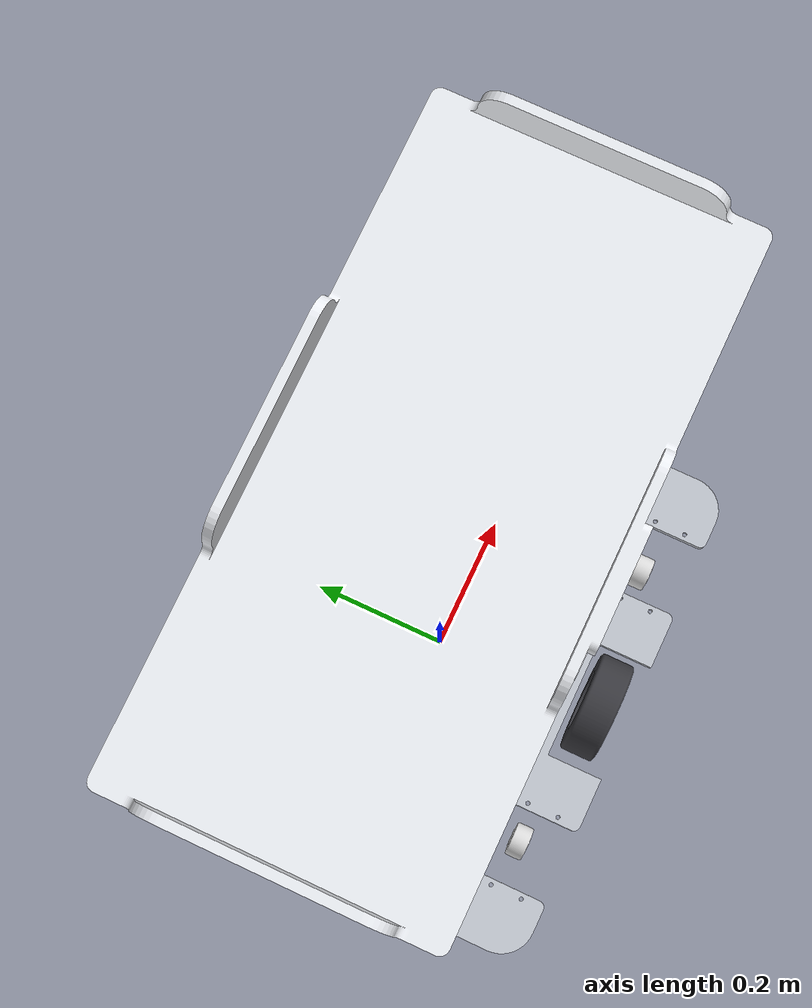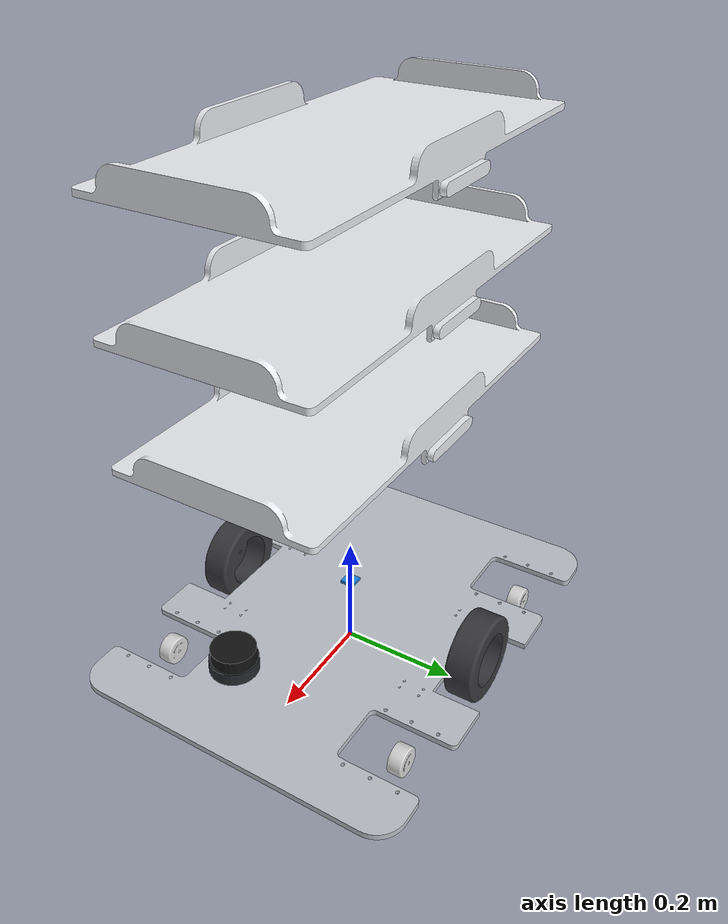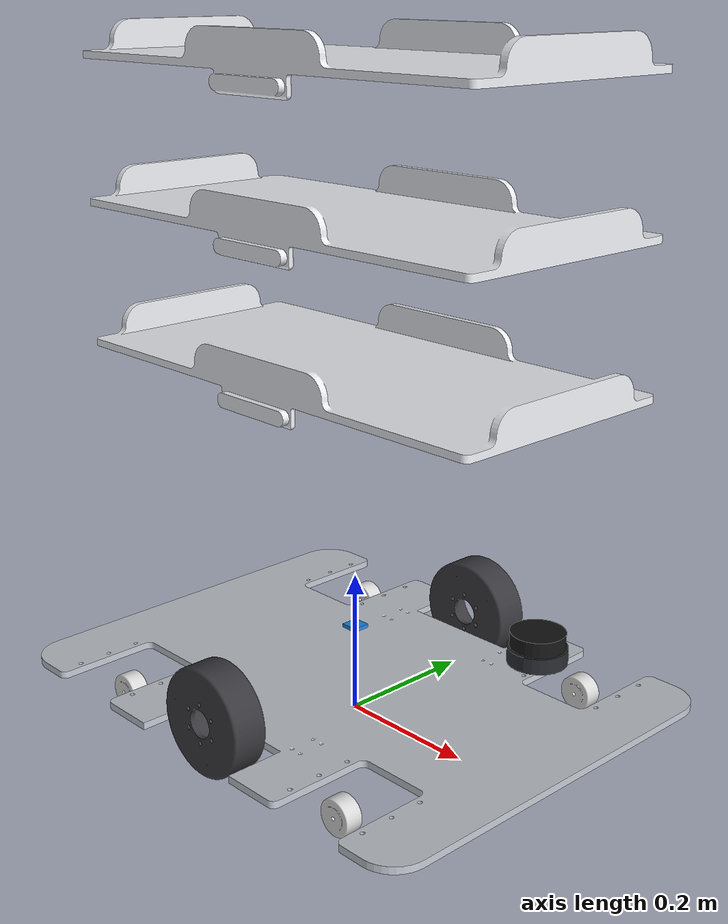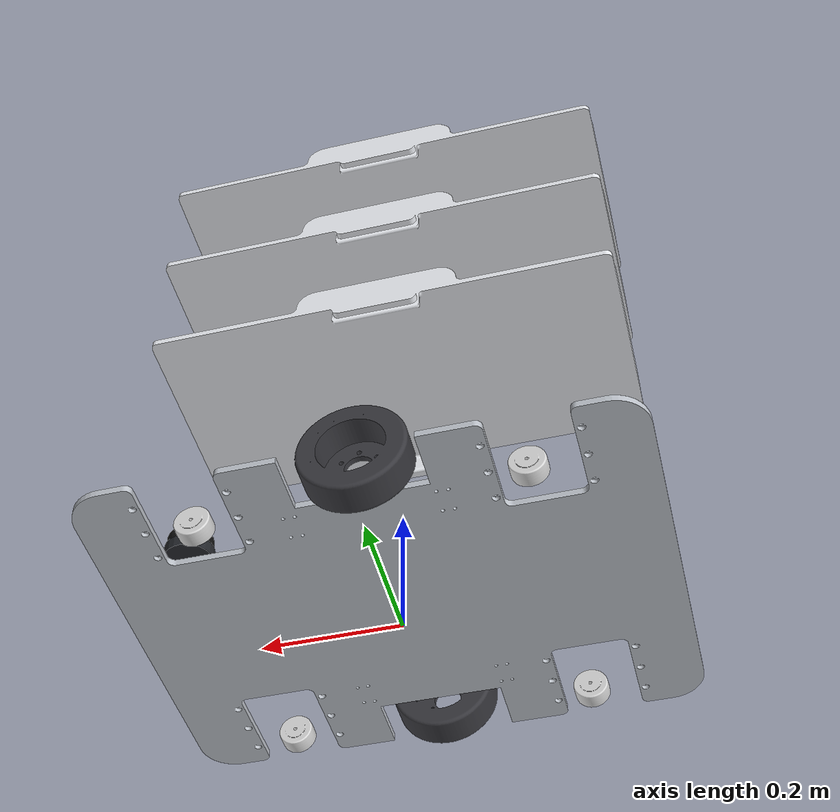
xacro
<?xml version="1.0"?>
<robot xmlns:xacro="http://www.ros.org/wiki/xacro" name="amr">

  <!-- Core Modular Libraries                               -->
  <xacro:include filename="properties.xacro" />
  <xacro:include filename="materials.xacro" />
  <xacro:include filename="macros_inertia.xacro" />

  <!-- REP-105 Root Frames: base_footprint & base_link      -->

  <!-- base_footprint: 2D projection on ground surface (Z = 0) -->
  <link name="base_footprint"/>

  <!-- base_link: Center of rotation on active drive axle (Z = wheel_radius = 0.075m) -->
  <joint name="base_footprint_joint" type="fixed">
    <parent link="base_footprint"/>
    <child link="base_link"/>
    <origin xyz="0 0 ${wheel_radius}" rpy="0 0 0"/>
  </joint>

  <link name="base_link"/>

  <!-- Robot Structural Components                          -->
  <xacro:include filename="chassis.xacro" />
  <xacro:include filename="drive_wheels.xacro" />
  <xacro:include filename="caster_wheels.xacro" />
  <xacro:include filename="food_trays.xacro" />
  <xacro:include filename="lidar.xacro" />
  <xacro:include filename="imu.xacro" />

  <!-- Gazebo Simulation Plugins & Encoder Feedback         -->
  <xacro:include filename="gazebo.xacro" />

</robot>

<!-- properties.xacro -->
<robot xmlns:xacro="http://www.ros.org/wiki/xacro">

  <!-- Robot Dimensions & Kinematic Properties             -->

  <!-- Active Drive Wheels specifications -->
  <xacro:property name="wheel_radius"   value="0.075"/>
  <xacro:property name="wheel_width"    value="0.050"/>
  <xacro:property name="wheel_mass"     value="2.0"/>
  <!-- Distance from robot center (Y-axis): 250mm -->
  <xacro:property name="wheel_y_offset" value="0.250"/>
  <xacro:property name="wheel_track"    value="${2.0 * wheel_y_offset}"/>

  <!-- Passive Caster Wheels specifications -->
  <xacro:property name="caster_radius"   value="0.025"/>
  <xacro:property name="caster_width"    value="0.027"/>
  <xacro:property name="caster_mass"     value="0.5"/>
  <!-- Distance from drive axle (X-axis): 220mm -->
  <xacro:property name="caster_x_offset" value="0.22"/>
  <!-- Distance from robot center (Y-axis): 230mm -->
  <xacro:property name="caster_y_offset" value="0.23"/>
  <!-- Z offset so casters touch ground (Z_ground = 0) -->
  <xacro:property name="caster_z_offset" value="${-(wheel_radius - caster_radius)}"/>

  <!-- Chassis dimensions -->
  <xacro:property name="chassis_length"    value="0.760"/>
  <xacro:property name="chassis_width"     value="0.600"/>
  <xacro:property name="chassis_thickness" value="0.010"/>
  <xacro:property name="chassis_mass"      value="25.0"/>
  <xacro:property name="ground_clearance"  value="0.040"/>

  <!-- Elevation of bottom of chassis relative to base_link (at wheel axle: 0.075m) -->
  <!-- z_offset = ground_clearance - wheel_radius = 0.040 - 0.075 = -0.035m -->
  <xacro:property name="chassis_z_offset" value="${ground_clearance - wheel_radius}"/>

  <!-- Food Delivery Trays Specifications                  -->
  <xacro:property name="tray_length" value="0.720"/>
  <xacro:property name="tray_width"  value="0.365"/>
  <xacro:property name="tray_height" value="0.080"/>
  <xacro:property name="tray_mass"   value="5.0"/>

  <!-- Elevation parameters -->
  <!-- Tray 1 bottom from chassis bottom: 424mm -->
  <xacro:property name="tray_1_bottom_from_chassis" value="0.424"/>
  <!-- Distance between consecutive tray bottoms: 200mm -->
  <xacro:property name="tray_spacing"               value="0.200"/>

  <!-- Tray bottom Z positions relative to base_link -->
  <!-- Bottom of chassis is at chassis_z_offset (-0.035m) -->
  <xacro:property name="tray_1_z" value="${chassis_z_offset + tray_1_bottom_from_chassis}"/>
  <xacro:property name="tray_2_z" value="${tray_1_z + tray_spacing}"/>
  <xacro:property name="tray_3_z" value="${tray_2_z + tray_spacing}"/>

  <!-- 2D LiDAR Sensor Specifications                      -->
  <xacro:property name="lidar_radius"          value="0.038"/> <!-- Radius 38mm (Max diameter 76mm - standard RPLIDAR A2) -->
  <xacro:property name="lidar_height"          value="0.040"/> <!-- Height 40mm -->
  <xacro:property name="lidar_mass"            value="0.200"/> <!-- Mass 200g -->

  <!-- LiDAR Placement -->
  <!-- Clearance from LiDAR max diameter front edge to vehicle front edge: 15mm -->
  <xacro:property name="lidar_front_clearance" value="0.015"/>
  <xacro:property name="lidar_x_offset"        value="${chassis_length/2.0 - lidar_front_clearance - lidar_radius}"/>
  <xacro:property name="lidar_y_offset"        value="0.0"/>

  <!-- Elevation Z: offset from chassis bottom -->
  <xacro:property name="lidar_z_from_chassis"  value="0.150"/>
  <xacro:property name="lidar_z_offset"        value="${chassis_z_offset + lidar_z_from_chassis}"/>

  <!-- 9-DOF IMU Sensor Specifications                     -->
  <xacro:property name="imu_mass"     value="0.050"/> <!-- Mass 50g -->
  <xacro:property name="imu_size_x"   value="0.025"/> <!-- Length 25mm -->
  <xacro:property name="imu_size_y"   value="0.025"/> <!-- Width 25mm -->
  <xacro:property name="imu_size_z"   value="0.005"/> <!-- Height 5mm -->

  <!-- IMU Placement (rigidly mounted near center of rotation) -->
  <xacro:property name="imu_x_offset" value="0.0"/>
  <xacro:property name="imu_y_offset" value="0.0"/>
  <xacro:property name="imu_z_offset" value="0.050"/>

</robot>

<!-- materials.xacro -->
<robot xmlns:xacro="http://www.ros.org/wiki/xacro">

  <!-- Color definitions for RViz -->
  <material name="robot_white">
    <color rgba="0.92 0.93 0.95 1.0"/>
  </material>

  <material name="robot_dark">
    <color rgba="0.15 0.16 0.18 1.0"/>
  </material>

  <material name="robot_metal">
    <color rgba="0.75 0.77 0.80 1.0"/>
  </material>

  <material name="robot_accent">
    <color rgba="0.12 0.53 0.90 1.0"/>
  </material>

  <material name="robot_wheel">
    <color rgba="0.22 0.22 0.24 1.0"/>
  </material>

  <material name="robot_caster">
    <color rgba="0.85 0.85 0.85 1.0"/>
  </material>

  <material name="robot_sensor">
    <color rgba="0.08 0.08 0.08 1.0"/>
  </material>

</robot>

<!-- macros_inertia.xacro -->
<robot xmlns:xacro="http://www.ros.org/wiki/xacro">

  <!-- Analytical Inertia Macros (Positive Definite Tensors) -->

  <!-- Solid Box Inertia -->
  <xacro:macro name="inertial_box" params="mass x y z *origin">
    <inertial>
      <xacro:insert_block name="origin"/>
      <mass value="${mass}"/>
      <inertia ixx="${(1.0/12.0) * mass * (y*y + z*z)}" ixy="0.0" ixz="0.0"
               iyy="${(1.0/12.0) * mass * (x*x + z*z)}" iyz="0.0"
               izz="${(1.0/12.0) * mass * (x*x + y*y)}"/>
    </inertial>
  </xacro:macro>

  <!-- Solid Cylinder Inertia (Z-axis aligned by default) -->
  <xacro:macro name="inertial_cylinder" params="mass length radius *origin">
    <inertial>
      <xacro:insert_block name="origin"/>
      <mass value="${mass}"/>
      <inertia ixx="${(1.0/12.0) * mass * (3.0*radius*radius + length*length)}" ixy="0.0" ixz="0.0"
               iyy="${(1.0/12.0) * mass * (3.0*radius*radius + length*length)}" iyz="0.0"
               izz="${(1.0/2.0) * mass * radius * radius}"/>
    </inertial>
  </xacro:macro>

  <!-- Solid Sphere Inertia -->
  <xacro:macro name="inertial_sphere" params="mass radius *origin">
    <inertial>
      <xacro:insert_block name="origin"/>
      <mass value="${mass}"/>
      <inertia ixx="${(2.0/5.0) * mass * radius * radius}" ixy="0.0" ixz="0.0"
               iyy="${(2.0/5.0) * mass * radius * radius}" iyz="0.0"
               izz="${(2.0/5.0) * mass * radius * radius}"/>
    </inertial>
  </xacro:macro>

</robot>

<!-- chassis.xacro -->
<robot xmlns:xacro="http://www.ros.org/wiki/xacro">

  <!-- Base Chassis Plate (Centered at X=0, Y=0, Z_ground=40mm) -->

  <joint name="chassis_joint" type="fixed">
    <parent link="base_link"/>
    <child link="chassis_link"/>
    <origin xyz="0 0 0" rpy="0 0 0"/>
  </joint>

  <link name="chassis_link">
    <!-- Visual: Base Chassis Plate STL -->
    <visual>
      <origin xyz="${-chassis_length/2.0} ${-chassis_width/2.0} ${chassis_z_offset}" rpy="${pi/2} 0 ${pi/2}"/>
      <geometry>
        <mesh filename="package://amr_description/meshes/visual/chassis.stl" scale="1 1 1"/>
      </geometry>
      <material name="robot_metal"/>
    </visual>

    <!-- Collision: Analytical Box Plate -->
    <collision>
      <origin xyz="0 0 ${chassis_z_offset + chassis_thickness/2.0}" rpy="0 0 0"/>
      <geometry>
        <box size="${chassis_length} ${chassis_width} ${chassis_thickness}"/>
      </geometry>
    </collision>

    <!-- Inertial: Analytical Box Inertia (${chassis_mass}kg steel/aluminum plate) -->
    <xacro:inertial_box mass="${chassis_mass}" x="${chassis_length}" y="${chassis_width}" z="${chassis_thickness}">
      <origin xyz="0 0 ${chassis_z_offset + chassis_thickness/2.0}" rpy="0 0 0"/>
    </xacro:inertial_box>
  </link>

  <gazebo reference="chassis_link">
    <material>Gazebo/Grey</material>
  </gazebo>

</robot>

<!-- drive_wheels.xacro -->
<robot xmlns:xacro="http://www.ros.org/wiki/xacro">

  <!-- Active Differential Drive Wheels                     -->

  <!-- Left Drive Wheel -->
  <joint name="left_wheel_joint" type="continuous">
    <parent link="base_link"/>
    <child link="left_wheel_link"/>
    <origin xyz="0 ${wheel_y_offset} 0" rpy="0 0 0"/>
    <axis xyz="0 1 0"/>
  </joint>

  <link name="left_wheel_link">
    <!-- Visual: active_wheel.stl centered at wheel rotational center -->
    <visual>
      <origin xyz="-0.075 -0.025 -0.075" rpy="0 0 0"/>
      <geometry>
        <mesh filename="package://amr_description/meshes/visual/active_wheel.stl" scale="1 1 1"/>
      </geometry>
      <material name="robot_wheel"/>
    </visual>

    <!-- Collision: Analytical Cylinder aligned along Y-axis -->
    <collision>
      <origin xyz="0 0 0" rpy="${pi/2} 0 0"/>
      <geometry>
        <cylinder radius="${wheel_radius}" length="${wheel_width}"/>
      </geometry>
    </collision>

    <!-- Inertial: Analytical Cylinder Inertia -->
    <xacro:inertial_cylinder mass="${wheel_mass}" length="${wheel_width}" radius="${wheel_radius}">
      <origin xyz="0 0 0" rpy="${pi/2} 0 0"/>
    </xacro:inertial_cylinder>
  </link>

  <gazebo reference="left_wheel_link">
    <material>Gazebo/DarkGrey</material>
    <mu1 value="1.0"/>
    <mu2 value="1.0"/>
    <kp value="10000000.0"/>
    <kd value="1.0"/>
  </gazebo>

  <!-- Right Drive Wheel -->
  <joint name="right_wheel_joint" type="continuous">
    <parent link="base_link"/>
    <child link="right_wheel_link"/>
    <origin xyz="0 -${wheel_y_offset} 0" rpy="0 0 0"/>
    <axis xyz="0 1 0"/>
  </joint>

  <link name="right_wheel_link">
    <!-- Visual: active_wheel.stl centered at wheel rotational center -->
    <visual>
      <origin xyz="-0.075 -0.025 -0.075" rpy="0 0 0"/>
      <geometry>
        <mesh filename="package://amr_description/meshes/visual/active_wheel.stl" scale="1 1 1"/>
      </geometry>
      <material name="robot_wheel"/>
    </visual>

    <!-- Collision: Analytical Cylinder aligned along Y-axis -->
    <collision>
      <origin xyz="0 0 0" rpy="${pi/2} 0 0"/>
      <geometry>
        <cylinder radius="${wheel_radius}" length="${wheel_width}"/>
      </geometry>
    </collision>

    <!-- Inertial: Analytical Cylinder Inertia -->
    <xacro:inertial_cylinder mass="${wheel_mass}" length="${wheel_width}" radius="${wheel_radius}">
      <origin xyz="0 0 0" rpy="${pi/2} 0 0"/>
    </xacro:inertial_cylinder>
  </link>

  <gazebo reference="right_wheel_link">
    <material>Gazebo/DarkGrey</material>
    <mu1 value="1.0"/>
    <mu2 value="1.0"/>
    <kp value="10000000.0"/>
    <kd value="1.0"/>
  </gazebo>

</robot>

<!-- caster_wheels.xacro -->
<robot xmlns:xacro="http://www.ros.org/wiki/xacro">

  <!-- Passive Caster Wheel Macro (Frictionless Sphere)     -->

  <xacro:macro name="caster_wheel" params="prefix x_pos y_pos">
    <joint name="caster_${prefix}_joint" type="fixed">
      <parent link="base_link"/>
      <child link="caster_${prefix}_link"/>
      <origin xyz="${x_pos} ${y_pos} ${caster_z_offset}" rpy="0 0 0"/>
    </joint>

    <link name="caster_${prefix}_link">
      <!-- Visual: passive_wheel.stl centered at caster rotation center -->
      <visual>
        <origin xyz="-0.0631 1.5650 -0.0335" rpy="${pi/2} 0 0"/>
        <geometry>
          <mesh filename="package://amr_description/meshes/visual/passive_wheel.stl" scale="1 1 1"/>
        </geometry>
        <material name="robot_caster"/>
      </visual>

      <!-- Collision: Analytical Sphere for omnidirectional rolling without jamming -->
      <collision>
        <origin xyz="0 0 0" rpy="0 0 0"/>
        <geometry>
          <sphere radius="${caster_radius}"/>
        </geometry>
      </collision>

      <!-- Inertial: Analytical Sphere Inertia -->
      <xacro:inertial_sphere mass="${caster_mass}" radius="${caster_radius}">
        <origin xyz="0 0 0" rpy="0 0 0"/>
      </xacro:inertial_sphere>
    </link>

    <!-- Gazebo physics: Zero friction ensures smooth omnidirectional sliding -->
    <gazebo reference="caster_${prefix}_link">
      <material>Gazebo/Grey</material>
      <mu1 value="0.0"/>
      <mu2 value="0.0"/>
      <kp value="1000000.0"/>
      <kd value="100.0"/>
    </gazebo>
  </xacro:macro>

  <!-- Instantiate 4 Casters from defined parametric offsets -->
  <xacro:caster_wheel prefix="fl" x_pos="${caster_x_offset}"  y_pos="${caster_y_offset}"/>
  <xacro:caster_wheel prefix="fr" x_pos="${caster_x_offset}"  y_pos="-${caster_y_offset}"/>
  <xacro:caster_wheel prefix="rl" x_pos="-${caster_x_offset}" y_pos="${caster_y_offset}"/>
  <xacro:caster_wheel prefix="rr" x_pos="-${caster_x_offset}" y_pos="-${caster_y_offset}"/>

</robot>

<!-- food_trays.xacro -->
<robot xmlns:xacro="http://www.ros.org/wiki/xacro">

  <!-- Food Delivery Trays Macro                            -->

  <xacro:macro name="food_tray" params="prefix z_pos">
    <joint name="${prefix}_joint" type="fixed">
      <parent link="base_link"/>
      <child link="${prefix}_link"/>
      <origin xyz="0 0 ${z_pos}" rpy="0 0 0"/>
    </joint>

    <link name="${prefix}_link">
      <!-- Visual: Centered at X=0, Y=0 coinciding with chassis axes, bottom at Z=0 -->
      <visual>
        <origin xyz="${tray_length/2.0} ${-tray_width/2.0} 0" rpy="0 0 ${pi/2}"/>
        <geometry>
          <mesh filename="package://amr_description/meshes/visual/food_tray.stl" scale="1 1 1"/>
        </geometry>
        <material name="robot_white"/>
      </visual>

      <!-- Collision: Analytical Box matching tray outer boundary -->
      <collision>
        <origin xyz="0 0 ${tray_height/2.0}" rpy="0 0 0"/>
        <geometry>
          <box size="${tray_length} ${tray_width} ${tray_height}"/>
        </geometry>
      </collision>

      <!-- Inertial: Analytical Box (5kg per tray) -->
      <xacro:inertial_box mass="${tray_mass}" x="${tray_length}" y="${tray_width}" z="${tray_height}">
        <origin xyz="0 0 ${tray_height/2.0}" rpy="0 0 0"/>
      </xacro:inertial_box>
    </link>

    <gazebo reference="${prefix}_link">
      <material>Gazebo/White</material>
    </gazebo>
  </xacro:macro>

  <!-- Instantiate 3 Food Trays -->
  <!-- Tray 1: Bottom is 424mm above chassis bottom -->
  <xacro:food_tray prefix="food_tray_1" z_pos="${tray_1_z}"/>

  <!-- Tray 2: Bottom is 200mm above Tray 1 bottom -->
  <xacro:food_tray prefix="food_tray_2" z_pos="${tray_2_z}"/>

  <!-- Tray 3: Bottom is 200mm above Tray 2 bottom -->
  <xacro:food_tray prefix="food_tray_3" z_pos="${tray_3_z}"/>

</robot>

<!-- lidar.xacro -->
<robot xmlns:xacro="http://www.ros.org/wiki/xacro">

  <!-- 2D LiDAR Sensor (Front-mounted, ROS Native Primitive) -->

  <joint name="laser_joint" type="fixed">
    <parent link="base_link"/>
    <child link="laser_frame"/>
    <origin xyz="${lidar_x_offset} ${lidar_y_offset} ${lidar_z_offset}" rpy="0 0 0"/>
  </joint>

  <link name="laser_frame">
    <!-- Visual 1: Lower stationary base mount -->
    <visual>
      <origin xyz="0 0 ${lidar_height * 0.25}" rpy="0 0 0"/>
      <geometry>
        <cylinder radius="${lidar_radius}" length="${lidar_height * 0.5}"/>
      </geometry>
      <material name="robot_dark"/>
    </visual>

    <!-- Visual 2: Upper rotating optical turret -->
    <visual>
      <origin xyz="0 0 ${lidar_height * 0.75}" rpy="0 0 0"/>
      <geometry>
        <cylinder radius="${lidar_radius * 0.92}" length="${lidar_height * 0.5}"/>
      </geometry>
      <material name="robot_sensor"/>
    </visual>

    <!-- Visual 3: Forward optical lens indicator -->
    <visual>
      <origin xyz="${lidar_radius * 0.65} 0 ${lidar_height * 0.75}" rpy="0 0 0"/>
      <geometry>
        <box size="${lidar_radius * 0.4} ${lidar_radius * 0.3} ${lidar_height * 0.25}"/>
      </geometry>
      <material name="robot_accent"/>
    </visual>

    <!-- Collision: Full cylindrical boundary -->
    <collision>
      <origin xyz="0 0 ${lidar_height / 2.0}" rpy="0 0 0"/>
      <geometry>
        <cylinder radius="${lidar_radius}" length="${lidar_height}"/>
      </geometry>
    </collision>

    <!-- Inertial: Analytical Cylinder Inertia (200g) -->
    <xacro:inertial_cylinder mass="${lidar_mass}" length="${lidar_height}" radius="${lidar_radius}">
      <origin xyz="0 0 ${lidar_height / 2.0}" rpy="0 0 0"/>
    </xacro:inertial_cylinder>
  </link>

  <!-- Gazebo Sensor Simulation for LaserScan Data Collection -->
  <gazebo reference="laser_frame">
    <material>Gazebo/Black</material>
    <sensor name="lidar_sensor" type="ray">
      <pose>0 0 ${lidar_height * 0.75} 0 0 0</pose>
      <always_on>true</always_on>
      <visualize>false</visualize>
      <update_rate>10</update_rate>
      <ray>
        <scan>
          <horizontal>
            <samples>360</samples>
            <resolution>1</resolution>
            <min_angle>-3.14159265</min_angle>
            <max_angle>3.14159265</max_angle>
          </horizontal>
        </scan>
        <range>
          <min>0.15</min>
          <max>12.0</max>
          <resolution>0.01</resolution>
        </range>
        <noise>
          <type>gaussian</type>
          <mean>0.0</mean>
          <stddev>0.01</stddev>
        </noise>
      </ray>
      <plugin name="lidar_controller" filename="libgazebo_ros_ray_sensor.so">
        <ros>
          <remapping>~/out:=scan</remapping>
        </ros>
        <output_type>sensor_msgs/LaserScan</output_type>
        <frame_name>laser_frame</frame_name>
      </plugin>
    </sensor>
  </gazebo>

</robot>

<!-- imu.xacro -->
<robot xmlns:xacro="http://www.ros.org/wiki/xacro">

  <!-- 9-DOF IMU Sensor (Bosch BNO055 / Standard IMU)       -->

  <!-- Mounted rigidly near the geometric center of rotation -->
  <joint name="imu_joint" type="fixed">
    <parent link="base_link"/>
    <child link="imu_link"/>
    <origin xyz="${imu_x_offset} ${imu_y_offset} ${imu_z_offset}" rpy="0 0 0"/>
  </joint>

  <link name="imu_link">
    <!-- Visual: Compact IMU sensor module -->
    <visual>
      <origin xyz="0 0 0" rpy="0 0 0"/>
      <geometry>
        <box size="${imu_size_x} ${imu_size_y} ${imu_size_z}"/>
      </geometry>
      <material name="robot_accent"/>
    </visual>

    <!-- Collision: Analytical box matching module dimensions -->
    <collision>
      <origin xyz="0 0 0" rpy="0 0 0"/>
      <geometry>
        <box size="${imu_size_x} ${imu_size_y} ${imu_size_z}"/>
      </geometry>
    </collision>

    <!-- Inertial: Analytical Box Inertia -->
    <xacro:inertial_box mass="${imu_mass}" x="${imu_size_x}" y="${imu_size_y}" z="${imu_size_z}">
      <origin xyz="0 0 0" rpy="0 0 0"/>
    </xacro:inertial_box>
  </link>

  <!-- Gazebo Sensor Simulation for IMU Data Collection -->
  <gazebo reference="imu_link">
    <material>Gazebo/Blue</material>
    <sensor name="imu_sensor" type="imu">
      <always_on>true</always_on>
      <update_rate>100</update_rate>
      <visualize>false</visualize>
      <imu>
        <angular_velocity>
          <x>
            <noise type="gaussian">
              <mean>0.0</mean>
              <stddev>2e-4</stddev>
            </noise>
          </x>
          <y>
            <noise type="gaussian">
              <mean>0.0</mean>
              <stddev>2e-4</stddev>
            </noise>
          </y>
          <z>
            <noise type="gaussian">
              <mean>0.0</mean>
              <stddev>2e-4</stddev>
            </noise>
          </z>
        </angular_velocity>
        <linear_acceleration>
          <x>
            <noise type="gaussian">
              <mean>0.0</mean>
              <stddev>1.7e-2</stddev>
            </noise>
          </x>
          <y>
            <noise type="gaussian">
              <mean>0.0</mean>
              <stddev>1.7e-2</stddev>
            </noise>
          </y>
          <z>
            <noise type="gaussian">
              <mean>0.0</mean>
              <stddev>1.7e-2</stddev>
            </noise>
          </z>
        </linear_acceleration>
      </imu>
      <plugin name="imu_controller" filename="libgazebo_ros_imu_sensor.so">
        <ros>
          <remapping>~/out:=imu/data</remapping>
        </ros>
        <initial_orientation_as_reference>false</initial_orientation_as_reference>
        <frame_name>imu_link</frame_name>
      </plugin>
    </sensor>
  </gazebo>

</robot>
